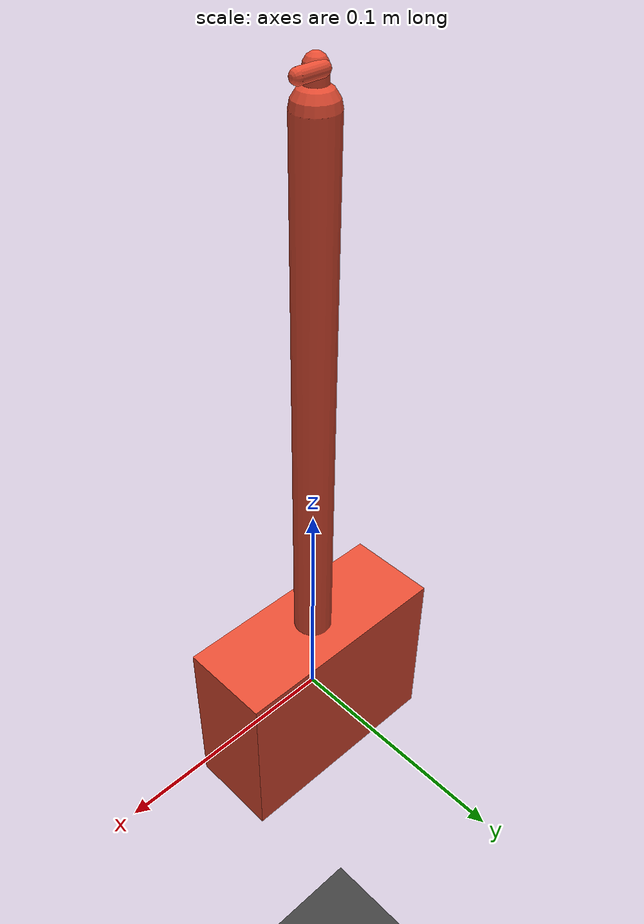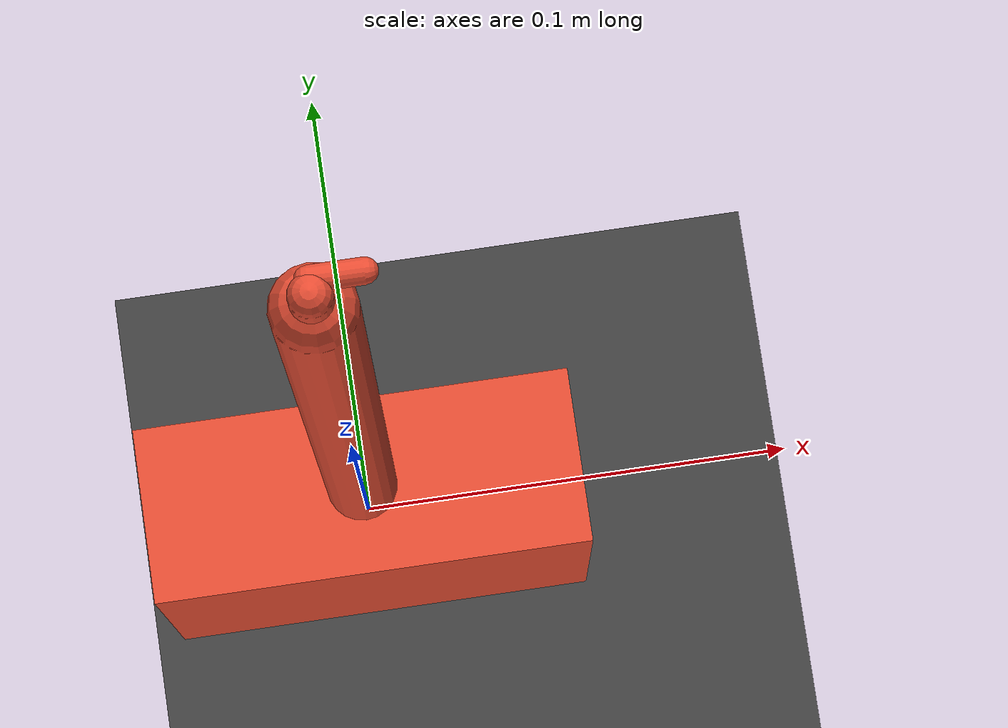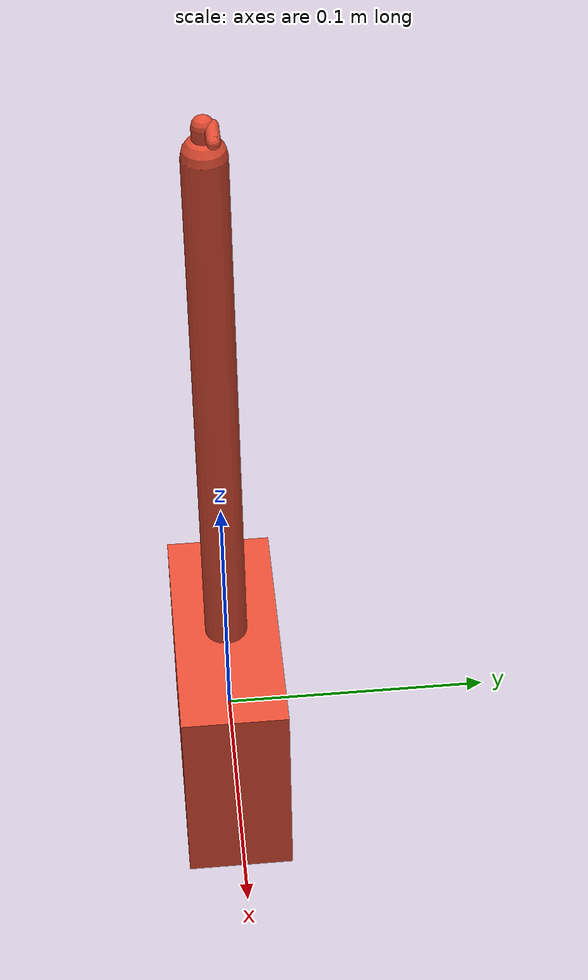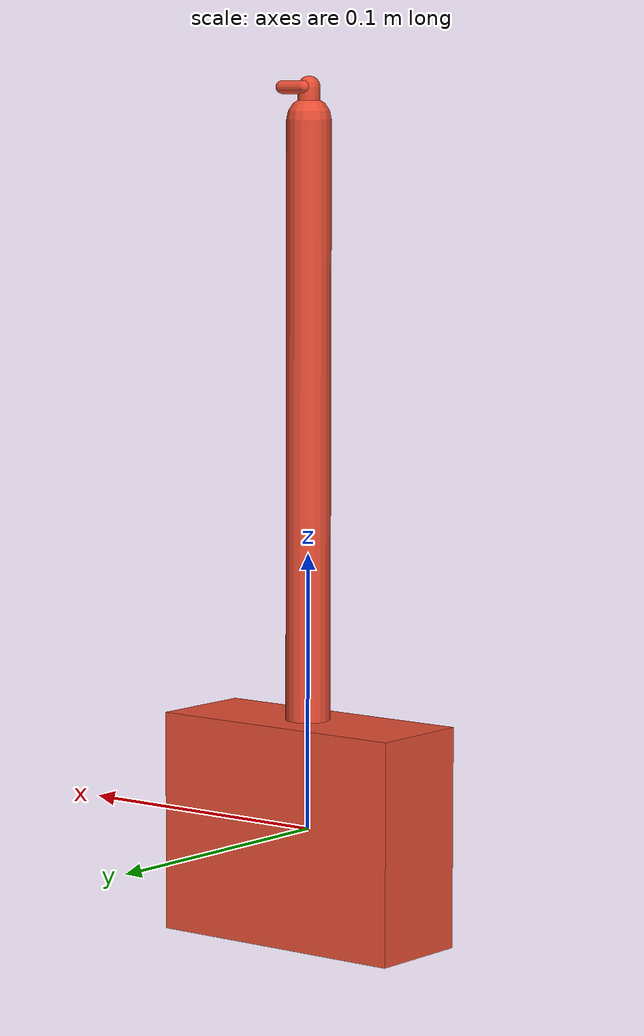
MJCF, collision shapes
This XML file does not appear to have any style information associated with it. The document tree is shown below.
<mujoco model="dvrk_large_needle_driver_420006">
<compiler angle="radian" meshdir="/home/justinrc/workspace/src/dual_servo_ur3e/mesh/low_res" autolimits="true"/>
<option timestep="0.002" gravity="0 0 -9.81"/>
<visual>
<global offwidth="1280" offheight="960"/>
</visual>
<default>
<default class="visual">
<geom contype="0" conaffinity="0" group="2" density="0" rgba="0.85 0.86 0.88 1"/>
</default>
<default class="collision">
<geom contype="1" conaffinity="1" group="3" rgba="0.9 0.3 0.2 0.3"/>
</default>
<joint damping="0.02" frictionloss="0.001"/>
</default>
<asset>
<mesh name="tool_main_insert" file="tool_main_insert.OBJ"/>
<mesh name="tool_roll_link" file="tool_roll_link.OBJ"/>
<mesh name="tool_pitch_link" file="tool_pitch_link.OBJ"/>
<mesh name="tool_yaw_link" file="tool_yaw_link.OBJ"/>
<mesh name="gripper_left" file="gripper_left.OBJ"/>
<mesh name="gripper_right" file="gripper_right.OBJ"/>
<material name="steel" rgba="0.85 0.86 0.88 1" specular="0.6" shininess="0.5"/>
<material name="dark_steel" rgba="0.25 0.26 0.29 1" specular="0.4" shininess="0.3"/>
<texture type="skybox" builtin="gradient" rgb1="0.3 0.5 0.7" rgb2="0 0 0" width="256" height="256"/>
<texture name="grid" type="2d" builtin="checker" rgb1="0.2 0.2 0.2" rgb2="0.3 0.3 0.3" width="300" height="300"/>
<material name="grid_mat" texture="grid" texrepeat="5 5" reflectance="0.1"/>
</asset>
<worldbody>
<light pos="0.3 0.3 0.4" dir="-0.5 -0.5 -0.7" diffuse="0.8 0.8 0.8"/>
<light pos="-0.3 0.2 0.3" dir="0.5 -0.3 -0.5" diffuse="0.4 0.4 0.4"/>
<geom name="floor" type="plane" size="0.5 0.5 0.01" material="grid_mat" pos="0 0 -0.35"/>
<camera name="closeup" pos="0.25 -0.25 0.15" xyaxes="0.7071 0.7071 0 -0.35 0.35 0.87" mode="fixed"/>
<camera name="full_tool" pos="0.45 -0.45 0.1" xyaxes="0.7071 0.7071 0 -0.35 0.35 0.87" mode="fixed"/>
<camera name="wrist_closeup" pos="0.03 -0.03 0.30" mode="targetbody" target="yaw_link"/>
<!--  Fixed instrument housing / sterile adapter interface. Not actuated: this is
         the part that plugs into the PSM instrument carriage.  -->
<body name="instrument_mount" pos="0 0 0">
<geom class="visual" type="mesh" mesh="tool_main_insert" material="dark_steel"/>
<geom class="collision" type="box" size="0.05 0.02 0.04" pos="0 0 0" mass="0.15"/>
<!--  ROLL: rotation of the whole shaft about its own long axis (local Z).  -->
<body name="roll_link" pos="0 0 0.03669">
<joint name="tool_roll" type="hinge" axis="0 0 1" range="-3.14159 3.14159" limited="true"/>
<geom class="visual" type="mesh" mesh="tool_roll_link" material="steel"/>
<geom class="collision" type="capsule" fromto="0 0 0 0 0 0.2178" size="0.008" mass="0.06"/>
<body name="pitch_link" pos="0 0 0.2178" quat="0.7071068 0 -0.7071068 0">
<joint name="wrist_pitch" type="hinge" axis="0 0 1" range="-1.3963 1.3963" limited="true"/>
<geom class="visual" type="mesh" mesh="tool_pitch_link" material="steel"/>
<geom class="collision" type="capsule" fromto="0 0 0 0.01133 0 0" size="0.004" mass="0.003"/>
<body name="yaw_link" pos="0.01133 0 0" quat="0.7071068 -0.7071068 0 0">
<joint name="wrist_yaw" type="hinge" axis="0 0 1" range="-1.3963 1.3963" limited="true"/>
<geom class="visual" type="mesh" mesh="tool_yaw_link" material="dark_steel"/>
<geom class="collision" type="capsule" fromto="0 0 0 0 0 0.00285" size="0.0006" mass="0.0005"/>
<body name="gripper_left" pos="0 0 0.00285">
<joint name="jaw_left" type="hinge" axis="0 0 1" range="0 1.0472" limited="true"/>
<geom class="visual" type="mesh" mesh="gripper_left" material="steel"/>
<geom class="collision" type="capsule" fromto="0 0 0 0 0.00965 0" size="0.0024" mass="0.001"/>
</body>
<body name="gripper_right" pos="0 0 0.00285">
<joint name="jaw_right" type="hinge" axis="0 0 -1" range="0 1.0472" limited="true"/>
<geom class="visual" type="mesh" mesh="gripper_right" material="steel"/>
<geom class="collision" type="capsule" fromto="0 0 0 0 0.00965 0" size="0.0024" mass="0.001"/>
</body>
</body>
</body>
</body>
</body>
</worldbody>
<actuator>
<motor name="act_tool_roll" joint="tool_roll" ctrlrange="-0.05 0.05" gear="1"/>
<motor name="act_wrist_pitch" joint="wrist_pitch" ctrlrange="-0.03 0.03" gear="1"/>
<motor name="act_wrist_yaw" joint="wrist_yaw" ctrlrange="-0.03 0.03" gear="1"/>
<motor name="act_jaw_left" joint="jaw_left" ctrlrange="-0.01 0.01" gear="1"/>
<motor name="act_jaw_right" joint="jaw_right" ctrlrange="-0.01 0.01" gear="1"/>
</actuator>
</mujoco>
